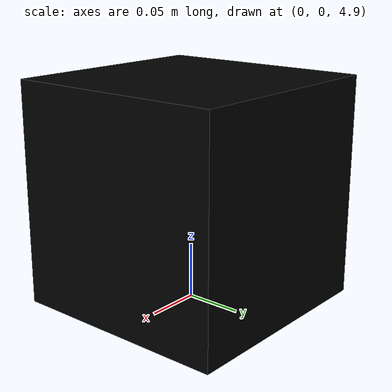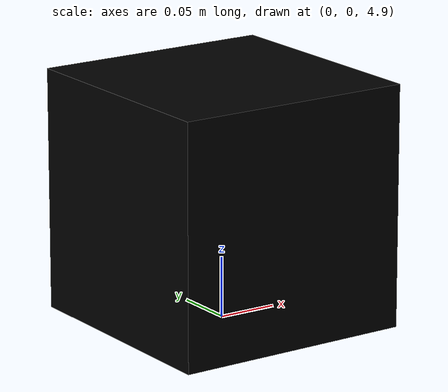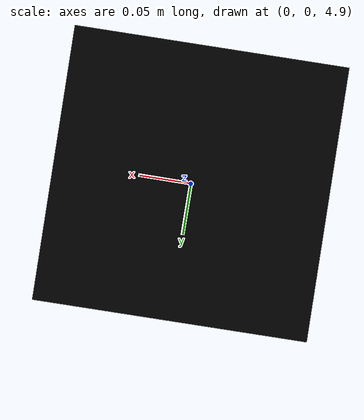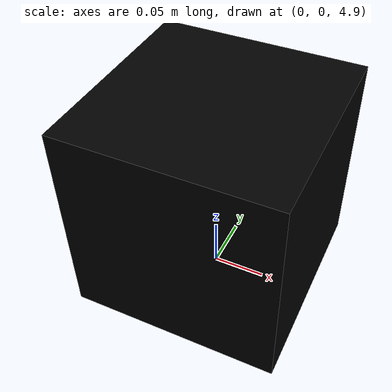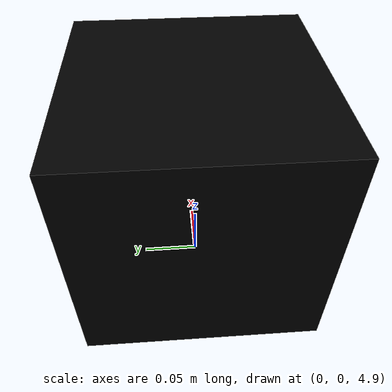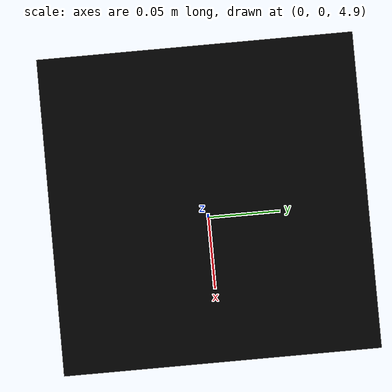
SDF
<?xml version="1.0" ?>
<sdf version="1.8">
    <world name="visual_odometry">

        <plugin filename="gz-sim-physics-system" name="gz::sim::systems::Physics"/>
        <plugin filename="gz-sim-user-commands-system" name="gz::sim::systems::UserCommands"/>
        <plugin filename="gz-sim-scene-broadcaster-system" name="gz::sim::systems::SceneBroadcaster"/>
        <plugin name='gz::sim::systems::Contact' filename='gz-sim-contact-system'/>
        <plugin name='gz::sim::systems::Imu' filename='gz-sim-imu-system'/>
        <plugin name='gz::sim::systems::AirPressure' filename='gz-sim-air-pressure-system'/>
        <plugin name='gz::sim::systems::Sensors' filename='gz-sim-sensors-system'>
            <render_engine>ogre2</render_engine>
        </plugin>

        <gui fullscreen="0">
            <plugin name='3D View' filename='GzScene3D'>
                <gz-gui>
                    <title>3D View</title>
                    <property type="bool" key="showTitleBar">false</property>
                    <property type="string" key="state">docked</property>
                </gz-gui>
                <engine>ogre2</engine>
                <scene>scene</scene>
                <ambient_light>0.4 0.4 0.4</ambient_light>
                <background_color>0.8 0.8 0.8</background_color>
                <camera_pose>0 -5 5 0 0.5 1.57</camera_pose>
                <camera_clip>
                    <near>0.25</near>
                    <far>25000</far>
                </camera_clip>
                <horizontal_fov>57.29578</horizontal_fov>
            </plugin>
            <plugin filename="WorldControl" name="World control">
                <gz-gui>
                    <title>World control</title>
                    <property type="bool" key="showTitleBar">false</property>
                    <property type="bool" key="resizable">false</property>
                    <property type="double" key="height">72</property>
                    <property type="double" key="width">150</property>
                    <property type="double" key="z">1</property>

                    <property type="string" key="state">floating</property>
                    <anchors target="3D View">
                    <line own="left" target="left"/>
                    <line own="bottom" target="bottom"/>
                    </anchors>
                </gz-gui>
                <play_pause>true</play_pause>
                <step>true</step>
                <start_paused>true</start_paused>
                <service>/world/world_demo/control</service>
                <stats_topic>/world/world_demo/stats</stats_topic>
            </plugin>
            <plugin filename="WorldStats" name="World stats">
                <gz-gui>
                    <title>World stats</title>
                    <property type="bool" key="showTitleBar">false</property>
                    <property type="bool" key="resizable">false</property>
                    <property type="double" key="height">110</property>
                    <property type="double" key="width">290</property>
                    <property type="double" key="z">1</property>

                    <property type="string" key="state">floating</property>
                    <anchors target="3D View">
                    <line own="right" target="right"/>
                    <line own="bottom" target="bottom"/>
                    </anchors>
                </gz-gui>

                <sim_time>true</sim_time>
                <real_time>true</real_time>
                <real_time_factor>true</real_time_factor>
                <iterations>true</iterations>
                <topic>/world/world_demo/stats</topic>
            </plugin>

            <plugin filename="Shapes" name="Shapes">
                <gz-gui>
                    <property key="resizable" type="bool">false</property>
                    <property key="x" type="double">0</property>
                    <property key="y" type="double">0</property>
                    <property key="width" type="double">250</property>
                    <property key="height" type="double">50</property>
                    <property key="state" type="string">floating</property>
                    <property key="showTitleBar" type="bool">false</property>
                    <property key="cardBackground" type="string">#666666</property>
                </gz-gui>
            </plugin>
            <plugin filename="Lights" name="Lights">
                <gz-gui>
                    <property key="resizable" type="bool">false</property>
                    <property key="x" type="double">250</property>
                    <property key="y" type="double">0</property>
                    <property key="width" type="double">150</property>
                    <property key="height" type="double">50</property>
                    <property key="state" type="string">floating</property>
                    <property key="showTitleBar" type="bool">false</property>
                    <property key="cardBackground" type="string">#666666</property>
                </gz-gui>
            </plugin>
            <plugin filename="TransformControl" name="Transform control">
                <gz-gui>
                    <property key="resizable" type="bool">false</property>
                    <property key="x" type="double">400</property>
                    <property key="y" type="double">0</property>
                    <property key="width" type="double">250</property>
                    <property key="height" type="double">50</property>
                    <property key="state" type="string">floating</property>
                    <property key="showTitleBar" type="bool">false</property>
                    <property key="cardBackground" type="string">#666666</property>
                </gz-gui>
            </plugin>

            <plugin filename="ComponentInspector" name="Component inspector">
                <gz-gui>
                    <property type="string" key="state">docked</property>
                </gz-gui>
            </plugin>
        </gui>

        <include>
            <pose>0 0 0.2 0 0 0</pose>
            <uri>model://checkerboard_plane</uri>
        </include>

        <include>
            <pose>0 0 0.075 0 0 0</pose>
            <uri>model://gray_ground</uri>
        </include>

        <include>
            <pose>0 0 5 0 1.57 0</pose>
            <uri>model://camera</uri>
        </include>

        <light type="directional" name="sun">
            <cast_shadows>true</cast_shadows>
            <pose>0 0 10 0 0 0</pose>
            <diffuse>0.8 0.8 0.8 1</diffuse>
            <specular>0.2 0.2 0.2 1</specular>
            <attenuation>
                <range>1000</range>
                <constant>0.9</constant>
                <linear>0.01</linear>
                <quadratic>0.001</quadratic>
            </attenuation>
            <direction>-0.5 0.1 -0.9</direction>
        </light>
    </world>
</sdf>

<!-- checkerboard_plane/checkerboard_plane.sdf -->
<sdf version="1.6">
<model name="checkerboard_plane">
    <link name="link">
      <visual name="visual">
        <geometry>
          <mesh>
            <uri>model://checkerboard_plane/meshes/checkerboard_plane.dae</uri>
          </mesh>
        </geometry>
      </visual>
      <collision name="collision">
        <geometry>
          <box>
						<size>2 2 0.1</size>
					</box>
        </geometry>
      </collision>
    </link>
  </model>
</sdf>

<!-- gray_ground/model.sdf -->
<sdf version="1.8">
 	 <model name="ground_plane">
		<pose>0 0 0 0 -0 0</pose>
		<static>true</static>
		<link name='link'>
			<collision name='collision'>
				<geometry>
					<plane>
						<normal>0 0 1</normal>
						<size>1 1</size>
					</plane>
				</geometry>
				<surface>
					<friction>
						<ode/>
					</friction>
					<bounce/>
					<contact/>
				</surface>
			</collision>
			<visual name='visual'>
				<geometry>
				<plane>
					<normal>0 0 1</normal>
					<size>100 100</size>
				</plane>
				</geometry>
				<material>
					<ambient>0.1 0.1 0.1 1</ambient>
					<diffuse>0.3 0.3 0.3 1</diffuse>
					<specular>0 0 1 1</specular>
				</material>
			</visual>
			<pose>0 0 0 0 -0 0</pose>
			<inertial>
				<pose>0 0 0 0 -0 0</pose>
				<mass>1</mass>
				<inertia>
				<ixx>1</ixx>
				<ixy>0</ixy>
				<ixz>0</ixz>
				<iyy>1</iyy>
				<iyz>0</iyz>
				<izz>1</izz>
				</inertia>
			</inertial>
			<enable_wind>false</enable_wind>
		</link>
		<self_collide>false</self_collide>
    </model>
</sdf>

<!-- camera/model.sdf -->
<sdf version="1.8">
	<model name="camera">
		<static>true</static>
      	<link name="box_link">
			<collision name="box_collision">
				<geometry>
					<box>
						<size>0.2 0.2 0.2</size>
					</box>
				</geometry>
			</collision>
			<visual name="box_visual">
				<geometry>
					<box>
						<size>0.2 0.2 0.2</size>
					</box>
				</geometry>
				<material>
					<ambient>0 0 0 1</ambient>
					<diffuse>0 0 0 1</diffuse>
					<specular>0 0 0 1</specular>
				</material>
			</visual>
			<sensor name="camera" type="camera">
                <pose>0.43 0 0.26 0 0 0</pose>
                <camera>
                    <horizontal_fov>1.089</horizontal_fov>
                    <image>
                      <width>720</width>
                      <height>720</height>
                      <format>R8G8B8</format>
                    </image>
                    <clip>
                      <near>0.1</near>
                      <far>100</far>
                    </clip>
                </camera>
                <always_on>1</always_on>
                <update_rate>30</update_rate>
                <visualize>true</visualize>
                <topic>camera</topic>
            </sensor>
      	</link>
    </model>
</sdf>
